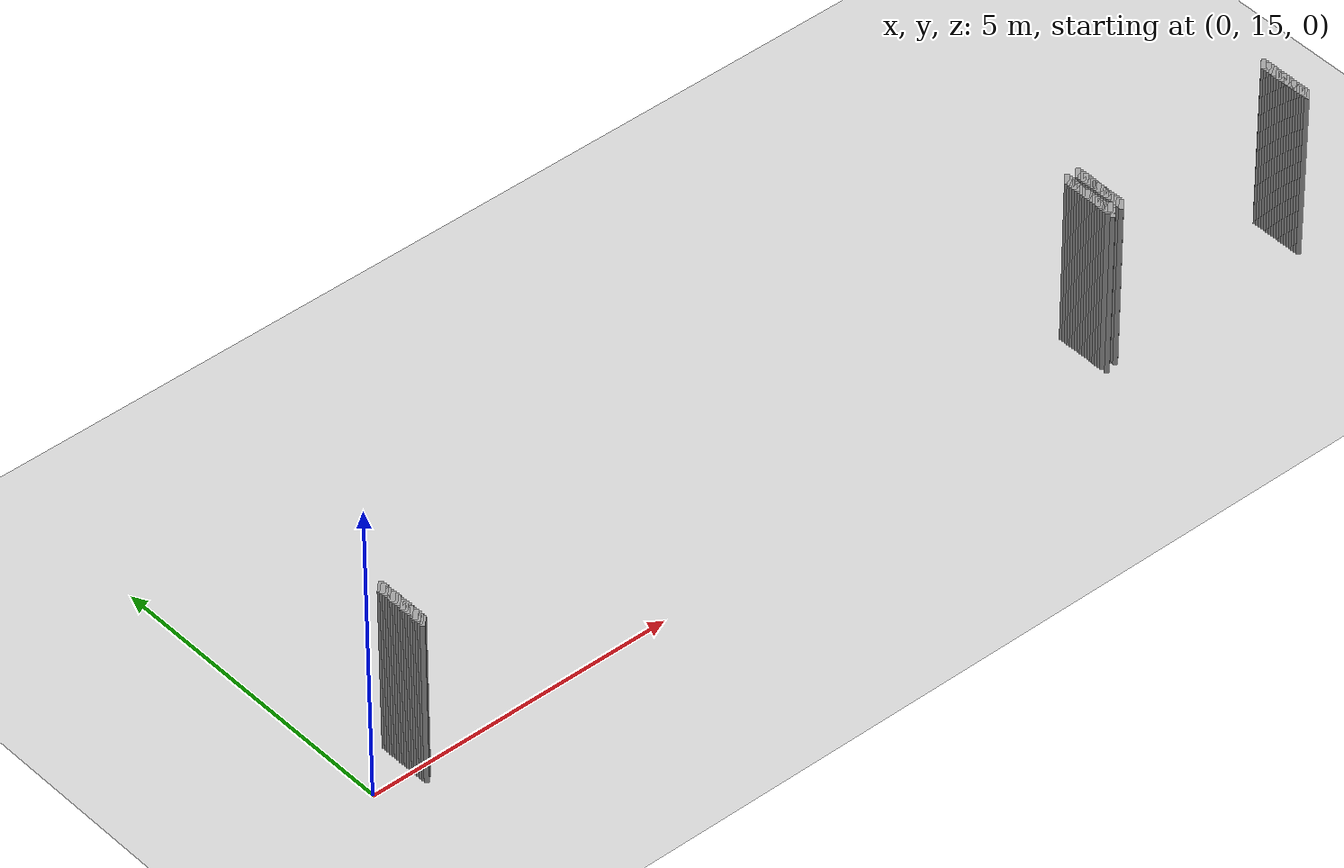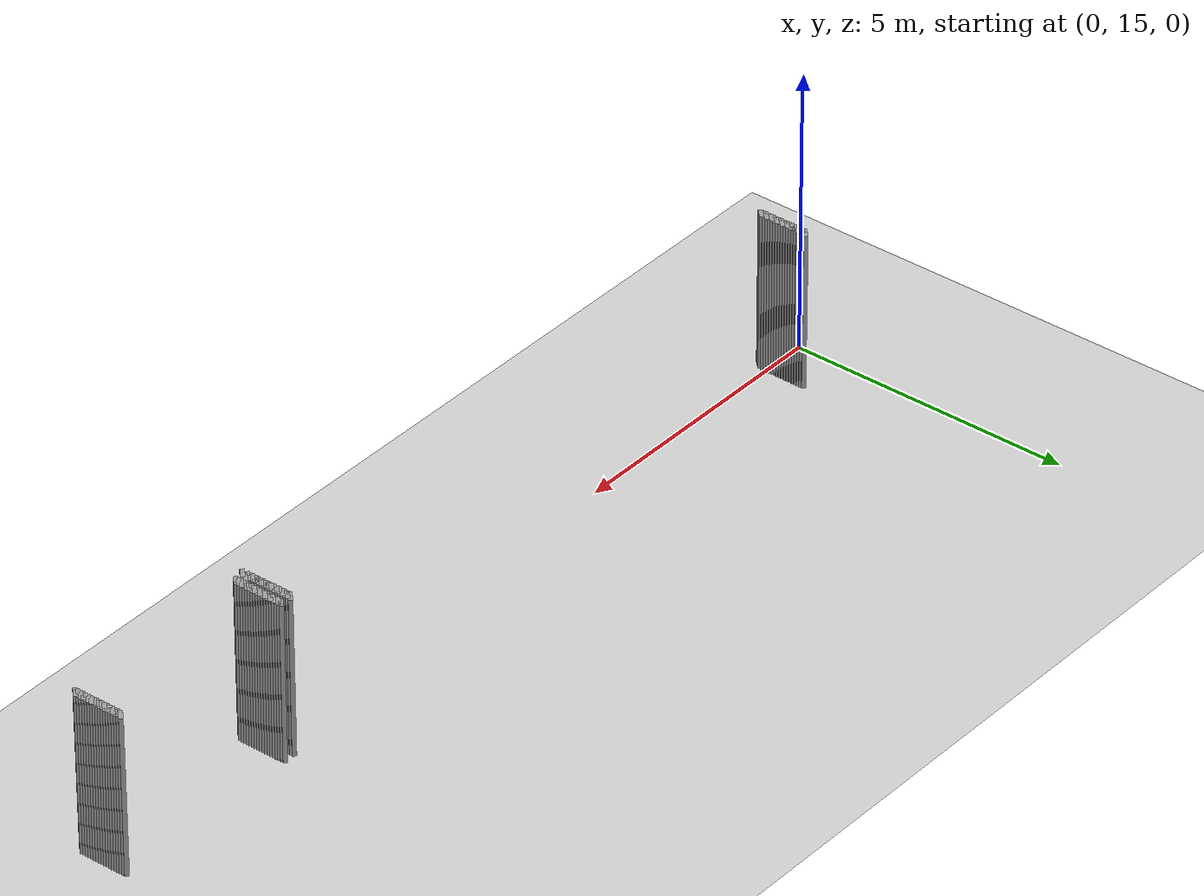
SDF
<sdf version="1.5">
 <world name="default">
  <include><uri>model://ground_plane</uri></include>
  <include><uri>model://sun</uri></include>
  <model name="grey_wall_597">
   <static>1</static>
   <link name="link">
    <pose>12.8 15.700000000000001  1.4 0 0 -0.7853981633974483</pose>
    <collision name="collision">
     <geometry><box><size>0.07071067811865576 .2  2.8</size></box></geometry>
    </collision>
    <visual name="visual">
     <cast_shadows>0</cast_shadows>
     <geometry><box><size>0.07071067811865576 .2  2.8</size></box></geometry>
     <material>
      <script>
       <uri>model://grey_wall/materials/scripts</uri>
       <uri>model://grey_wall/materials/textures</uri>
       <name>vrc/grey_wall</name>
      </script>
     </material>
    </visual>
   </link>
  </model>
  <model name="grey_wall_598">
   <static>1</static>
   <link name="link">
    <pose>13.0 15.700000000000001  1.4 0 0 -0.7853981633974483</pose>
    <collision name="collision">
     <geometry><box><size>0.07071067811865576 .2  2.8</size></box></geometry>
    </collision>
    <visual name="visual">
     <cast_shadows>0</cast_shadows>
     <geometry><box><size>0.07071067811865576 .2  2.8</size></box></geometry>
     <material>
      <script>
       <uri>model://grey_wall/materials/scripts</uri>
       <uri>model://grey_wall/materials/textures</uri>
       <name>vrc/grey_wall</name>
      </script>
     </material>
    </visual>
   </link>
  </model>
  <model name="grey_wall_599">
   <static>1</static>
   <link name="link">
    <pose>16.45 15.700000000000001  1.4 0 0 -0.7853981633974838</pose>
    <collision name="collision">
     <geometry><box><size>0.07071067811865325 .2  2.8</size></box></geometry>
    </collision>
    <visual name="visual">
     <cast_shadows>0</cast_shadows>
     <geometry><box><size>0.07071067811865325 .2  2.8</size></box></geometry>
     <material>
      <script>
       <uri>model://grey_wall/materials/scripts</uri>
       <uri>model://grey_wall/materials/textures</uri>
       <name>vrc/grey_wall</name>
      </script>
     </material>
    </visual>
   </link>
  </model>
  <model name="grey_wall_600">
   <static>1</static>
   <link name="link">
    <pose>0.75 15.65  1.4 0 0 -0.7853981633974549</pose>
    <collision name="collision">
     <geometry><box><size>0.07071067811865529 .2  2.8</size></box></geometry>
    </collision>
    <visual name="visual">
     <cast_shadows>0</cast_shadows>
     <geometry><box><size>0.07071067811865529 .2  2.8</size></box></geometry>
     <material>
      <script>
       <uri>model://grey_wall/materials/scripts</uri>
       <uri>model://grey_wall/materials/textures</uri>
       <name>vrc/grey_wall</name>
      </script>
     </material>
    </visual>
   </link>
  </model>
  <model name="grey_wall_601">
   <static>1</static>
   <link name="link">
    <pose>12.8 15.65  1.4 0 0 -0.7853981633974483</pose>
    <collision name="collision">
     <geometry><box><size>0.07071067811865576 .2  2.8</size></box></geometry>
    </collision>
    <visual name="visual">
     <cast_shadows>0</cast_shadows>
     <geometry><box><size>0.07071067811865576 .2  2.8</size></box></geometry>
     <material>
      <script>
       <uri>model://grey_wall/materials/scripts</uri>
       <uri>model://grey_wall/materials/textures</uri>
       <name>vrc/grey_wall</name>
      </script>
     </material>
    </visual>
   </link>
  </model>
  <model name="grey_wall_602">
   <static>1</static>
   <link name="link">
    <pose>13.0 15.65  1.4 0 0 -0.7853981633974483</pose>
    <collision name="collision">
     <geometry><box><size>0.07071067811865576 .2  2.8</size></box></geometry>
    </collision>
    <visual name="visual">
     <cast_shadows>0</cast_shadows>
     <geometry><box><size>0.07071067811865576 .2  2.8</size></box></geometry>
     <material>
      <script>
       <uri>model://grey_wall/materials/scripts</uri>
       <uri>model://grey_wall/materials/textures</uri>
       <name>vrc/grey_wall</name>
      </script>
     </material>
    </visual>
   </link>
  </model>
  <model name="grey_wall_603">
   <static>1</static>
   <link name="link">
    <pose>16.45 15.65  1.4 0 0 -0.7853981633974838</pose>
    <collision name="collision">
     <geometry><box><size>0.07071067811865325 .2  2.8</size></box></geometry>
    </collision>
    <visual name="visual">
     <cast_shadows>0</cast_shadows>
     <geometry><box><size>0.07071067811865325 .2  2.8</size></box></geometry>
     <material>
      <script>
       <uri>model://grey_wall/materials/scripts</uri>
       <uri>model://grey_wall/materials/textures</uri>
       <name>vrc/grey_wall</name>
      </script>
     </material>
    </visual>
   </link>
  </model>
  <model name="grey_wall_604">
   <static>1</static>
   <link name="link">
    <pose>0.75 15.600000000000001  1.4 0 0 -0.7853981633974549</pose>
    <collision name="collision">
     <geometry><box><size>0.07071067811865529 .2  2.8</size></box></geometry>
    </collision>
    <visual name="visual">
     <cast_shadows>0</cast_shadows>
     <geometry><box><size>0.07071067811865529 .2  2.8</size></box></geometry>
     <material>
      <script>
       <uri>model://grey_wall/materials/scripts</uri>
       <uri>model://grey_wall/materials/textures</uri>
       <name>vrc/grey_wall</name>
      </script>
     </material>
    </visual>
   </link>
  </model>
  <model name="grey_wall_605">
   <static>1</static>
   <link name="link">
    <pose>12.8 15.600000000000001  1.4 0 0 -0.7853981633974483</pose>
    <collision name="collision">
     <geometry><box><size>0.07071067811865576 .2  2.8</size></box></geometry>
    </collision>
    <visual name="visual">
     <cast_shadows>0</cast_shadows>
     <geometry><box><size>0.07071067811865576 .2  2.8</size></box></geometry>
     <material>
      <script>
       <uri>model://grey_wall/materials/scripts</uri>
       <uri>model://grey_wall/materials/textures</uri>
       <name>vrc/grey_wall</name>
      </script>
     </material>
    </visual>
   </link>
  </model>
  <model name="grey_wall_606">
   <static>1</static>
   <link name="link">
    <pose>13.0 15.600000000000001  1.4 0 0 -0.7853981633974483</pose>
    <collision name="collision">
     <geometry><box><size>0.07071067811865576 .2  2.8</size></box></geometry>
    </collision>
    <visual name="visual">
     <cast_shadows>0</cast_shadows>
     <geometry><box><size>0.07071067811865576 .2  2.8</size></box></geometry>
     <material>
      <script>
       <uri>model://grey_wall/materials/scripts</uri>
       <uri>model://grey_wall/materials/textures</uri>
       <name>vrc/grey_wall</name>
      </script>
     </material>
    </visual>
   </link>
  </model>
  <model name="grey_wall_607">
   <static>1</static>
   <link name="link">
    <pose>16.45 15.600000000000001  1.4 0 0 -0.7853981633974838</pose>
    <collision name="collision">
     <geometry><box><size>0.07071067811865325 .2  2.8</size></box></geometry>
    </collision>
    <visual name="visual">
     <cast_shadows>0</cast_shadows>
     <geometry><box><size>0.07071067811865325 .2  2.8</size></box></geometry>
     <material>
      <script>
       <uri>model://grey_wall/materials/scripts</uri>
       <uri>model://grey_wall/materials/textures</uri>
       <name>vrc/grey_wall</name>
      </script>
     </material>
    </visual>
   </link>
  </model>
  <model name="grey_wall_608">
   <static>1</static>
   <link name="link">
    <pose>0.75 15.55  1.4 0 0 -0.7853981633974549</pose>
    <collision name="collision">
     <geometry><box><size>0.07071067811865529 .2  2.8</size></box></geometry>
    </collision>
    <visual name="visual">
     <cast_shadows>0</cast_shadows>
     <geometry><box><size>0.07071067811865529 .2  2.8</size></box></geometry>
     <material>
      <script>
       <uri>model://grey_wall/materials/scripts</uri>
       <uri>model://grey_wall/materials/textures</uri>
       <name>vrc/grey_wall</name>
      </script>
     </material>
    </visual>
   </link>
  </model>
  <model name="grey_wall_609">
   <static>1</static>
   <link name="link">
    <pose>12.8 15.55  1.4 0 0 -0.7853981633974483</pose>
    <collision name="collision">
     <geometry><box><size>0.07071067811865576 .2  2.8</size></box></geometry>
    </collision>
    <visual name="visual">
     <cast_shadows>0</cast_shadows>
     <geometry><box><size>0.07071067811865576 .2  2.8</size></box></geometry>
     <material>
      <script>
       <uri>model://grey_wall/materials/scripts</uri>
       <uri>model://grey_wall/materials/textures</uri>
       <name>vrc/grey_wall</name>
      </script>
     </material>
    </visual>
   </link>
  </model>
  <model name="grey_wall_610">
   <static>1</static>
   <link name="link">
    <pose>13.0 15.55  1.4 0 0 -0.7853981633974483</pose>
    <collision name="collision">
     <geometry><box><size>0.07071067811865576 .2  2.8</size></box></geometry>
    </collision>
    <visual name="visual">
     <cast_shadows>0</cast_shadows>
     <geometry><box><size>0.07071067811865576 .2  2.8</size></box></geometry>
     <material>
      <script>
       <uri>model://grey_wall/materials/scripts</uri>
       <uri>model://grey_wall/materials/textures</uri>
       <name>vrc/grey_wall</name>
      </script>
     </material>
    </visual>
   </link>
  </model>
  <model name="grey_wall_611">
   <static>1</static>
   <link name="link">
    <pose>16.45 15.55  1.4 0 0 -0.7853981633974838</pose>
    <collision name="collision">
     <geometry><box><size>0.07071067811865325 .2  2.8</size></box></geometry>
    </collision>
    <visual name="visual">
     <cast_shadows>0</cast_shadows>
     <geometry><box><size>0.07071067811865325 .2  2.8</size></box></geometry>
     <material>
      <script>
       <uri>model://grey_wall/materials/scripts</uri>
       <uri>model://grey_wall/materials/textures</uri>
       <name>vrc/grey_wall</name>
      </script>
     </material>
    </visual>
   </link>
  </model>
  <model name="grey_wall_612">
   <static>1</static>
   <link name="link">
    <pose>0.75 15.5  1.4 0 0 -0.7853981633974549</pose>
    <collision name="collision">
     <geometry><box><size>0.07071067811865529 .2  2.8</size></box></geometry>
    </collision>
    <visual name="visual">
     <cast_shadows>0</cast_shadows>
     <geometry><box><size>0.07071067811865529 .2  2.8</size></box></geometry>
     <material>
      <script>
       <uri>model://grey_wall/materials/scripts</uri>
       <uri>model://grey_wall/materials/textures</uri>
       <name>vrc/grey_wall</name>
      </script>
     </material>
    </visual>
   </link>
  </model>
  <model name="grey_wall_613">
   <static>1</static>
   <link name="link">
    <pose>12.8 15.5  1.4 0 0 -0.7853981633974483</pose>
    <collision name="collision">
     <geometry><box><size>0.07071067811865576 .2  2.8</size></box></geometry>
    </collision>
    <visual name="visual">
     <cast_shadows>0</cast_shadows>
     <geometry><box><size>0.07071067811865576 .2  2.8</size></box></geometry>
     <material>
      <script>
       <uri>model://grey_wall/materials/scripts</uri>
       <uri>model://grey_wall/materials/textures</uri>
       <name>vrc/grey_wall</name>
      </script>
     </material>
    </visual>
   </link>
  </model>
  <model name="grey_wall_614">
   <static>1</static>
   <link name="link">
    <pose>13.0 15.5  1.4 0 0 -0.7853981633974483</pose>
    <collision name="collision">
     <geometry><box><size>0.07071067811865576 .2  2.8</size></box></geometry>
    </collision>
    <visual name="visual">
     <cast_shadows>0</cast_shadows>
     <geometry><box><size>0.07071067811865576 .2  2.8</size></box></geometry>
     <material>
      <script>
       <uri>model://grey_wall/materials/scripts</uri>
       <uri>model://grey_wall/materials/textures</uri>
       <name>vrc/grey_wall</name>
      </script>
     </material>
    </visual>
   </link>
  </model>
  <model name="grey_wall_615">
   <static>1</static>
   <link name="link">
    <pose>16.45 15.5  1.4 0 0 -0.7853981633974838</pose>
    <collision name="collision">
     <geometry><box><size>0.07071067811865325 .2  2.8</size></box></geometry>
    </collision>
    <visual name="visual">
     <cast_shadows>0</cast_shadows>
     <geometry><box><size>0.07071067811865325 .2  2.8</size></box></geometry>
     <material>
      <script>
       <uri>model://grey_wall/materials/scripts</uri>
       <uri>model://grey_wall/materials/textures</uri>
       <name>vrc/grey_wall</name>
      </script>
     </material>
    </visual>
   </link>
  </model>
  <model name="grey_wall_616">
   <static>1</static>
   <link name="link">
    <pose>0.75 15.450000000000001  1.4 0 0 -0.7853981633974549</pose>
    <collision name="collision">
     <geometry><box><size>0.07071067811865529 .2  2.8</size></box></geometry>
    </collision>
    <visual name="visual">
     <cast_shadows>0</cast_shadows>
     <geometry><box><size>0.07071067811865529 .2  2.8</size></box></geometry>
     <material>
      <script>
       <uri>model://grey_wall/materials/scripts</uri>
       <uri>model://grey_wall/materials/textures</uri>
       <name>vrc/grey_wall</name>
      </script>
     </material>
    </visual>
   </link>
  </model>
  <model name="grey_wall_617">
   <static>1</static>
   <link name="link">
    <pose>12.8 15.450000000000001  1.4 0 0 -0.7853981633974483</pose>
    <collision name="collision">
     <geometry><box><size>0.07071067811865576 .2  2.8</size></box></geometry>
    </collision>
    <visual name="visual">
     <cast_shadows>0</cast_shadows>
     <geometry><box><size>0.07071067811865576 .2  2.8</size></box></geometry>
     <material>
      <script>
       <uri>model://grey_wall/materials/scripts</uri>
       <uri>model://grey_wall/materials/textures</uri>
       <name>vrc/grey_wall</name>
      </script>
     </material>
    </visual>
   </link>
  </model>
  <model name="grey_wall_618">
   <static>1</static>
   <link name="link">
    <pose>13.0 15.450000000000001  1.4 0 0 -0.7853981633974483</pose>
    <collision name="collision">
     <geometry><box><size>0.07071067811865576 .2  2.8</size></box></geometry>
    </collision>
    <visual name="visual">
     <cast_shadows>0</cast_shadows>
     <geometry><box><size>0.07071067811865576 .2  2.8</size></box></geometry>
     <material>
      <script>
       <uri>model://grey_wall/materials/scripts</uri>
       <uri>model://grey_wall/materials/textures</uri>
       <name>vrc/grey_wall</name>
      </script>
     </material>
    </visual>
   </link>
  </model>
  <model name="grey_wall_619">
   <static>1</static>
   <link name="link">
    <pose>16.45 15.450000000000001  1.4 0 0 -0.7853981633974838</pose>
    <collision name="collision">
     <geometry><box><size>0.07071067811865325 .2  2.8</size></box></geometry>
    </collision>
    <visual name="visual">
     <cast_shadows>0</cast_shadows>
     <geometry><box><size>0.07071067811865325 .2  2.8</size></box></geometry>
     <material>
      <script>
       <uri>model://grey_wall/materials/scripts</uri>
       <uri>model://grey_wall/materials/textures</uri>
       <name>vrc/grey_wall</name>
      </script>
     </material>
    </visual>
   </link>
  </model>
  <model name="grey_wall_620">
   <static>1</static>
   <link name="link">
    <pose>0.75 15.4  1.4 0 0 -0.7853981633974549</pose>
    <collision name="collision">
     <geometry><box><size>0.07071067811865529 .2  2.8</size></box></geometry>
    </collision>
    <visual name="visual">
     <cast_shadows>0</cast_shadows>
     <geometry><box><size>0.07071067811865529 .2  2.8</size></box></geometry>
     <material>
      <script>
       <uri>model://grey_wall/materials/scripts</uri>
       <uri>model://grey_wall/materials/textures</uri>
       <name>vrc/grey_wall</name>
      </script>
     </material>
    </visual>
   </link>
  </model>
  <model name="grey_wall_621">
   <static>1</static>
   <link name="link">
    <pose>12.8 15.4  1.4 0 0 -0.7853981633974483</pose>
    <collision name="collision">
     <geometry><box><size>0.07071067811865576 .2  2.8</size></box></geometry>
    </collision>
    <visual name="visual">
     <cast_shadows>0</cast_shadows>
     <geometry><box><size>0.07071067811865576 .2  2.8</size></box></geometry>
     <material>
      <script>
       <uri>model://grey_wall/materials/scripts</uri>
       <uri>model://grey_wall/materials/textures</uri>
       <name>vrc/grey_wall</name>
      </script>
     </material>
    </visual>
   </link>
  </model>
  <model name="grey_wall_622">
   <static>1</static>
   <link name="link">
    <pose>13.0 15.4  1.4 0 0 -0.7853981633974483</pose>
    <collision name="collision">
     <geometry><box><size>0.07071067811865576 .2  2.8</size></box></geometry>
    </collision>
    <visual name="visual">
     <cast_shadows>0</cast_shadows>
     <geometry><box><size>0.07071067811865576 .2  2.8</size></box></geometry>
     <material>
      <script>
       <uri>model://grey_wall/materials/scripts</uri>
       <uri>model://grey_wall/materials/textures</uri>
       <name>vrc/grey_wall</name>
      </script>
     </material>
    </visual>
   </link>
  </model>
  <model name="grey_wall_623">
   <static>1</static>
   <link name="link">
    <pose>16.45 15.4  1.4 0 0 -0.7853981633974838</pose>
    <collision name="collision">
     <geometry><box><size>0.07071067811865325 .2  2.8</size></box></geometry>
    </collision>
    <visual name="visual">
     <cast_shadows>0</cast_shadows>
     <geometry><box><size>0.07071067811865325 .2  2.8</size></box></geometry>
     <material>
      <script>
       <uri>model://grey_wall/materials/scripts</uri>
       <uri>model://grey_wall/materials/textures</uri>
       <name>vrc/grey_wall</name>
      </script>
     </material>
    </visual>
   </link>
  </model>
  <model name="grey_wall_624">
   <static>1</static>
   <link name="link">
    <pose>0.75 15.350000000000001  1.4 0 0 -0.7853981633974549</pose>
    <collision name="collision">
     <geometry><box><size>0.07071067811865529 .2  2.8</size></box></geometry>
    </collision>
    <visual name="visual">
     <cast_shadows>0</cast_shadows>
     <geometry><box><size>0.07071067811865529 .2  2.8</size></box></geometry>
     <material>
      <script>
       <uri>model://grey_wall/materials/scripts</uri>
       <uri>model://grey_wall/materials/textures</uri>
       <name>vrc/grey_wall</name>
      </script>
     </material>
    </visual>
   </link>
  </model>
  <model name="grey_wall_625">
   <static>1</static>
   <link name="link">
    <pose>12.8 15.350000000000001  1.4 0 0 -0.7853981633974483</pose>
    <collision name="collision">
     <geometry><box><size>0.07071067811865576 .2  2.8</size></box></geometry>
    </collision>
    <visual name="visual">
     <cast_shadows>0</cast_shadows>
     <geometry><box><size>0.07071067811865576 .2  2.8</size></box></geometry>
     <material>
      <script>
       <uri>model://grey_wall/materials/scripts</uri>
       <uri>model://grey_wall/materials/textures</uri>
       <name>vrc/grey_wall</name>
      </script>
     </material>
    </visual>
   </link>
  </model>
  <model name="grey_wall_626">
   <static>1</static>
   <link name="link">
    <pose>13.0 15.350000000000001  1.4 0 0 -0.7853981633974483</pose>
    <collision name="collision">
     <geometry><box><size>0.07071067811865576 .2  2.8</size></box></geometry>
    </collision>
    <visual name="visual">
     <cast_shadows>0</cast_shadows>
     <geometry><box><size>0.07071067811865576 .2  2.8</size></box></geometry>
     <material>
      <script>
       <uri>model://grey_wall/materials/scripts</uri>
       <uri>model://grey_wall/materials/textures</uri>
       <name>vrc/grey_wall</name>
      </script>
     </material>
    </visual>
   </link>
  </model>
  <model name="grey_wall_627">
   <static>1</static>
   <link name="link">
    <pose>16.45 15.350000000000001  1.4 0 0 -0.7853981633974838</pose>
    <collision name="collision">
     <geometry><box><size>0.07071067811865325 .2  2.8</size></box></geometry>
    </collision>
    <visual name="visual">
     <cast_shadows>0</cast_shadows>
     <geometry><box><size>0.07071067811865325 .2  2.8</size></box></geometry>
     <material>
      <script>
       <uri>model://grey_wall/materials/scripts</uri>
       <uri>model://grey_wall/materials/textures</uri>
       <name>vrc/grey_wall</name>
      </script>
     </material>
    </visual>
   </link>
  </model>
  <model name="grey_wall_628">
   <static>1</static>
   <link name="link">
    <pose>0.75 15.3  1.4 0 0 -0.7853981633974549</pose>
    <collision name="collision">
     <geometry><box><size>0.07071067811865529 .2  2.8</size></box></geometry>
    </collision>
    <visual name="visual">
     <cast_shadows>0</cast_shadows>
     <geometry><box><size>0.07071067811865529 .2  2.8</size></box></geometry>
     <material>
      <script>
       <uri>model://grey_wall/materials/scripts</uri>
       <uri>model://grey_wall/materials/textures</uri>
       <name>vrc/grey_wall</name>
      </script>
     </material>
    </visual>
   </link>
  </model>
  <model name="grey_wall_629">
   <static>1</static>
   <link name="link">
    <pose>12.8 15.3  1.4 0 0 -0.7853981633974483</pose>
    <collision name="collision">
     <geometry><box><size>0.07071067811865576 .2  2.8</size></box></geometry>
    </collision>
    <visual name="visual">
     <cast_shadows>0</cast_shadows>
     <geometry><box><size>0.07071067811865576 .2  2.8</size></box></geometry>
     <material>
      <script>
       <uri>model://grey_wall/materials/scripts</uri>
       <uri>model://grey_wall/materials/textures</uri>
       <name>vrc/grey_wall</name>
      </script>
     </material>
    </visual>
   </link>
  </model>
  <model name="grey_wall_630">
   <static>1</static>
   <link name="link">
    <pose>13.0 15.3  1.4 0 0 -0.7853981633974483</pose>
    <collision name="collision">
     <geometry><box><size>0.07071067811865576 .2  2.8</size></box></geometry>
    </collision>
    <visual name="visual">
     <cast_shadows>0</cast_shadows>
     <geometry><box><size>0.07071067811865576 .2  2.8</size></box></geometry>
     <material>
      <script>
       <uri>model://grey_wall/materials/scripts</uri>
       <uri>model://grey_wall/materials/textures</uri>
       <name>vrc/grey_wall</name>
      </script>
     </material>
    </visual>
   </link>
  </model>
  <model name="grey_wall_631">
   <static>1</static>
   <link name="link">
    <pose>16.45 15.3  1.4 0 0 -0.7853981633974838</pose>
    <collision name="collision">
     <geometry><box><size>0.07071067811865325 .2  2.8</size></box></geometry>
    </collision>
    <visual name="visual">
     <cast_shadows>0</cast_shadows>
     <geometry><box><size>0.07071067811865325 .2  2.8</size></box></geometry>
     <material>
      <script>
       <uri>model://grey_wall/materials/scripts</uri>
       <uri>model://grey_wall/materials/textures</uri>
       <name>vrc/grey_wall</name>
      </script>
     </material>
    </visual>
   </link>
  </model>
  <model name="grey_wall_632">
   <static>1</static>
   <link name="link">
    <pose>0.75 15.25  1.4 0 0 -0.7853981633974549</pose>
    <collision name="collision">
     <geometry><box><size>0.07071067811865529 .2  2.8</size></box></geometry>
    </collision>
    <visual name="visual">
     <cast_shadows>0</cast_shadows>
     <geometry><box><size>0.07071067811865529 .2  2.8</size></box></geometry>
     <material>
      <script>
       <uri>model://grey_wall/materials/scripts</uri>
       <uri>model://grey_wall/materials/textures</uri>
       <name>vrc/grey_wall</name>
      </script>
     </material>
    </visual>
   </link>
  </model>
  <model name="grey_wall_633">
   <static>1</static>
   <link name="link">
    <pose>12.8 15.25  1.4 0 0 -0.7853981633974483</pose>
    <collision name="collision">
     <geometry><box><size>0.07071067811865576 .2  2.8</size></box></geometry>
    </collision>
    <visual name="visual">
     <cast_shadows>0</cast_shadows>
     <geometry><box><size>0.07071067811865576 .2  2.8</size></box></geometry>
     <material>
      <script>
       <uri>model://grey_wall/materials/scripts</uri>
       <uri>model://grey_wall/materials/textures</uri>
       <name>vrc/grey_wall</name>
      </script>
     </material>
    </visual>
   </link>
  </model>
  <model name="grey_wall_634">
   <static>1</static>
   <link name="link">
    <pose>13.0 15.25  1.4 0 0 -0.7853981633974483</pose>
    <collision name="collision">
     <geometry><box><size>0.07071067811865576 .2  2.8</size></box></geometry>
    </collision>
    <visual name="visual">
     <cast_shadows>0</cast_shadows>
     <geometry><box><size>0.07071067811865576 .2  2.8</size></box></geometry>
     <material>
      <script>
       <uri>model://grey_wall/materials/scripts</uri>
       <uri>model://grey_wall/materials/textures</uri>
       <name>vrc/grey_wall</name>
      </script>
     </material>
    </visual>
   </link>
  </model>
  <model name="grey_wall_635">
   <static>1</static>
   <link name="link">
    <pose>16.45 15.25  1.4 0 0 -0.7853981633974838</pose>
    <collision name="collision">
     <geometry><box><size>0.07071067811865325 .2  2.8</size></box></geometry>
    </collision>
    <visual name="visual">
     <cast_shadows>0</cast_shadows>
     <geometry><box><size>0.07071067811865325 .2  2.8</size></box></geometry>
     <material>
      <script>
       <uri>model://grey_wall/materials/scripts</uri>
       <uri>model://grey_wall/materials/textures</uri>
       <name>vrc/grey_wall</name>
      </script>
     </material>
    </visual>
   </link>
  </model>
  <model name="grey_wall_636">
   <static>1</static>
   <link name="link">
    <pose>0.75 15.200000000000001  1.4 0 0 -0.7853981633974549</pose>
    <collision name="collision">
     <geometry><box><size>0.07071067811865529 .2  2.8</size></box></geometry>
    </collision>
    <visual name="visual">
     <cast_shadows>0</cast_shadows>
     <geometry><box><size>0.07071067811865529 .2  2.8</size></box></geometry>
     <material>
      <script>
       <uri>model://grey_wall/materials/scripts</uri>
       <uri>model://grey_wall/materials/textures</uri>
       <name>vrc/grey_wall</name>
      </script>
     </material>
    </visual>
   </link>
  </model>
  <model name="grey_wall_637">
   <static>1</static>
   <link name="link">
    <pose>12.8 15.200000000000001  1.4 0 0 -0.7853981633974483</pose>
    <collision name="collision">
     <geometry><box><size>0.07071067811865576 .2  2.8</size></box></geometry>
    </collision>
    <visual name="visual">
     <cast_shadows>0</cast_shadows>
     <geometry><box><size>0.07071067811865576 .2  2.8</size></box></geometry>
     <material>
      <script>
       <uri>model://grey_wall/materials/scripts</uri>
       <uri>model://grey_wall/materials/textures</uri>
       <name>vrc/grey_wall</name>
      </script>
     </material>
    </visual>
   </link>
  </model>
  <model name="grey_wall_638">
   <static>1</static>
   <link name="link">
    <pose>13.0 15.200000000000001  1.4 0 0 -0.7853981633974483</pose>
    <collision name="collision">
     <geometry><box><size>0.07071067811865576 .2  2.8</size></box></geometry>
    </collision>
    <visual name="visual">
     <cast_shadows>0</cast_shadows>
     <geometry><box><size>0.07071067811865576 .2  2.8</size></box></geometry>
     <material>
      <script>
       <uri>model://grey_wall/materials/scripts</uri>
       <uri>model://grey_wall/materials/textures</uri>
       <name>vrc/grey_wall</name>
      </script>
     </material>
    </visual>
   </link>
  </model>
  <model name="grey_wall_639">
   <static>1</static>
   <link name="link">
    <pose>16.45 15.200000000000001  1.4 0 0 -0.7853981633974838</pose>
    <collision name="collision">
     <geometry><box><size>0.07071067811865325 .2  2.8</size></box></geometry>
    </collision>
    <visual name="visual">
     <cast_shadows>0</cast_shadows>
     <geometry><box><size>0.07071067811865325 .2  2.8</size></box></geometry>
     <material>
      <script>
       <uri>model://grey_wall/materials/scripts</uri>
       <uri>model://grey_wall/materials/textures</uri>
       <name>vrc/grey_wall</name>
      </script>
     </material>
    </visual>
   </link>
  </model>
  <model name="grey_wall_640">
   <static>1</static>
   <link name="link">
    <pose>0.75 15.15  1.4 0 0 -0.7853981633974549</pose>
    <collision name="collision">
     <geometry><box><size>0.07071067811865529 .2  2.8</size></box></geometry>
    </collision>
    <visual name="visual">
     <cast_shadows>0</cast_shadows>
     <geometry><box><size>0.07071067811865529 .2  2.8</size></box></geometry>
     <material>
      <script>
       <uri>model://grey_wall/materials/scripts</uri>
       <uri>model://grey_wall/materials/textures</uri>
       <name>vrc/grey_wall</name>
      </script>
     </material>
    </visual>
   </link>
  </model>
  <model name="grey_wall_641">
   <static>1</static>
   <link name="link">
    <pose>12.8 15.15  1.4 0 0 -0.7853981633974483</pose>
    <collision name="collision">
     <geometry><box><size>0.07071067811865576 .2  2.8</size></box></geometry>
    </collision>
    <visual name="visual">
     <cast_shadows>0</cast_shadows>
     <geometry><box><size>0.07071067811865576 .2  2.8</size></box></geometry>
     <material>
      <script>
       <uri>model://grey_wall/materials/scripts</uri>
       <uri>model://grey_wall/materials/textures</uri>
       <name>vrc/grey_wall</name>
      </script>
     </material>
    </visual>
   </link>
  </model>
  <model name="grey_wall_642">
   <static>1</static>
   <link name="link">
    <pose>13.0 15.15  1.4 0 0 -0.7853981633974483</pose>
    <collision name="collision">
     <geometry><box><size>0.07071067811865576 .2  2.8</size></box></geometry>
    </collision>
    <visual name="visual">
     <cast_shadows>0</cast_shadows>
     <geometry><box><size>0.07071067811865576 .2  2.8</size></box></geometry>
     <material>
      <script>
       <uri>model://grey_wall/materials/scripts</uri>
       <uri>model://grey_wall/materials/textures</uri>
       <name>vrc/grey_wall</name>
      </script>
     </material>
    </visual>
   </link>
  </model>
  <model name="grey_wall_643">
   <static>1</static>
   <link name="link">
    <pose>16.45 15.15  1.4 0 0 -0.7853981633974838</pose>
    <collision name="collision">
     <geometry><box><size>0.07071067811865325 .2  2.8</size></box></geometry>
    </collision>
    <visual name="visual">
     <cast_shadows>0</cast_shadows>
     <geometry><box><size>0.07071067811865325 .2  2.8</size></box></geometry>
     <material>
      <script>
       <uri>model://grey_wall/materials/scripts</uri>
       <uri>model://grey_wall/materials/textures</uri>
       <name>vrc/grey_wall</name>
      </script>
     </material>
    </visual>
   </link>
  </model>
  <model name="grey_wall_644">
   <static>1</static>
   <link name="link">
    <pose>0.75 15.100000000000001  1.4 0 0 -0.7853981633974549</pose>
    <collision name="collision">
     <geometry><box><size>0.07071067811865529 .2  2.8</size></box></geometry>
    </collision>
    <visual name="visual">
     <cast_shadows>0</cast_shadows>
     <geometry><box><size>0.07071067811865529 .2  2.8</size></box></geometry>
     <material>
      <script>
       <uri>model://grey_wall/materials/scripts</uri>
       <uri>model://grey_wall/materials/textures</uri>
       <name>vrc/grey_wall</name>
      </script>
     </material>
    </visual>
   </link>
  </model>
  <model name="grey_wall_645">
   <static>1</static>
   <link name="link">
    <pose>12.8 15.100000000000001  1.4 0 0 -0.7853981633974483</pose>
    <collision name="collision">
     <geometry><box><size>0.07071067811865576 .2  2.8</size></box></geometry>
    </collision>
    <visual name="visual">
     <cast_shadows>0</cast_shadows>
     <geometry><box><size>0.07071067811865576 .2  2.8</size></box></geometry>
     <material>
      <script>
       <uri>model://grey_wall/materials/scripts</uri>
       <uri>model://grey_wall/materials/textures</uri>
       <name>vrc/grey_wall</name>
      </script>
     </material>
    </visual>
   </link>
  </model>
  <model name="grey_wall_646">
   <static>1</static>
   <link name="link">
    <pose>13.0 15.100000000000001  1.4 0 0 -0.7853981633974483</pose>
    <collision name="collision">
     <geometry><box><size>0.07071067811865576 .2  2.8</size></box></geometry>
    </collision>
    <visual name="visual">
     <cast_shadows>0</cast_shadows>
     <geometry><box><size>0.07071067811865576 .2  2.8</size></box></geometry>
     <material>
      <script>
       <uri>model://grey_wall/materials/scripts</uri>
       <uri>model://grey_wall/materials/textures</uri>
       <name>vrc/grey_wall</name>
      </script>
     </material>
    </visual>
   </link>
  </model>
  <model name="grey_wall_647">
   <static>1</static>
   <link name="link">
    <pose>16.45 15.100000000000001  1.4 0 0 -0.7853981633974838</pose>
    <collision name="collision">
     <geometry><box><size>0.07071067811865325 .2  2.8</size></box></geometry>
    </collision>
    <visual name="visual">
     <cast_shadows>0</cast_shadows>
     <geometry><box><size>0.07071067811865325 .2  2.8</size></box></geometry>
     <material>
      <script>
       <uri>model://grey_wall/materials/scripts</uri>
       <uri>model://grey_wall/materials/textures</uri>
       <name>vrc/grey_wall</name>
      </script>
     </material>
    </visual>
   </link>
  </model>
  <model name="grey_wall_648">
   <static>1</static>
   <link name="link">
    <pose>0.75 15.05  1.4 0 0 -0.7853981633974549</pose>
    <collision name="collision">
     <geometry><box><size>0.07071067811865529 .2  2.8</size></box></geometry>
    </collision>
    <visual name="visual">
     <cast_shadows>0</cast_shadows>
     <geometry><box><size>0.07071067811865529 .2  2.8</size></box></geometry>
     <material>
      <script>
       <uri>model://grey_wall/materials/scripts</uri>
       <uri>model://grey_wall/materials/textures</uri>
       <name>vrc/grey_wall</name>
      </script>
     </material>
    </visual>
   </link>
  </model>
  <model name="grey_wall_649">
   <static>1</static>
   <link name="link">
    <pose>12.8 15.05  1.4 0 0 -0.7853981633974483</pose>
    <collision name="collision">
     <geometry><box><size>0.07071067811865576 .2  2.8</size></box></geometry>
    </collision>
    <visual name="visual">
     <cast_shadows>0</cast_shadows>
     <geometry><box><size>0.07071067811865576 .2  2.8</size></box></geometry>
     <material>
      <script>
       <uri>model://grey_wall/materials/scripts</uri>
       <uri>model://grey_wall/materials/textures</uri>
       <name>vrc/grey_wall</name>
      </script>
     </material>
    </visual>
   </link>
  </model>
  <model name="grey_wall_650">
   <static>1</static>
   <link name="link">
    <pose>13.0 15.05  1.4 0 0 -0.7853981633974483</pose>
    <collision name="collision">
     <geometry><box><size>0.07071067811865576 .2  2.8</size></box></geometry>
    </collision>
    <visual name="visual">
     <cast_shadows>0</cast_shadows>
     <geometry><box><size>0.07071067811865576 .2  2.8</size></box></geometry>
     <material>
      <script>
       <uri>model://grey_wall/materials/scripts</uri>
       <uri>model://grey_wall/materials/textures</uri>
       <name>vrc/grey_wall</name>
      </script>
     </material>
    </visual>
   </link>
  </model>
  <model name="grey_wall_651">
   <static>1</static>
   <link name="link">
    <pose>16.45 15.05  1.4 0 0 -0.7853981633974838</pose>
    <collision name="collision">
     <geometry><box><size>0.07071067811865325 .2  2.8</size></box></geometry>
    </collision>
    <visual name="visual">
     <cast_shadows>0</cast_shadows>
     <geometry><box><size>0.07071067811865325 .2  2.8</size></box></geometry>
     <material>
      <script>
       <uri>model://grey_wall/materials/scripts</uri>
       <uri>model://grey_wall/materials/textures</uri>
       <name>vrc/grey_wall</name>
      </script>
     </material>
    </visual>
   </link>
  </model>
  <model name="grey_wall_652">
   <static>1</static>
   <link name="link">
    <pose>0.75 15.0  1.4 0 0 -0.7853981633974549</pose>
    <collision name="collision">
     <geometry><box><size>0.07071067811865529 .2  2.8</size></box></geometry>
    </collision>
    <visual name="visual">
     <cast_shadows>0</cast_shadows>
     <geometry><box><size>0.07071067811865529 .2  2.8</size></box></geometry>
     <material>
      <script>
       <uri>model://grey_wall/materials/scripts</uri>
       <uri>model://grey_wall/materials/textures</uri>
       <name>vrc/grey_wall</name>
      </script>
     </material>
    </visual>
   </link>
  </model>
  <model name="grey_wall_653">
   <static>1</static>
   <link name="link">
    <pose>12.8 15.0  1.4 0 0 -0.7853981633974483</pose>
    <collision name="collision">
     <geometry><box><size>0.07071067811865576 .2  2.8</size></box></geometry>
    </collision>
    <visual name="visual">
     <cast_shadows>0</cast_shadows>
     <geometry><box><size>0.07071067811865576 .2  2.8</size></box></geometry>
     <material>
      <script>
       <uri>model://grey_wall/materials/scripts</uri>
       <uri>model://grey_wall/materials/textures</uri>
       <name>vrc/grey_wall</name>
      </script>
     </material>
    </visual>
   </link>
  </model>
  <model name="grey_wall_654">
   <static>1</static>
   <link name="link">
    <pose>13.0 15.0  1.4 0 0 -0.7853981633974483</pose>
    <collision name="collision">
     <geometry><box><size>0.07071067811865576 .2  2.8</size></box></geometry>
    </collision>
    <visual name="visual">
     <cast_shadows>0</cast_shadows>
     <geometry><box><size>0.07071067811865576 .2  2.8</size></box></geometry>
     <material>
      <script>
       <uri>model://grey_wall/materials/scripts</uri>
       <uri>model://grey_wall/materials/textures</uri>
       <name>vrc/grey_wall</name>
      </script>
     </material>
    </visual>
   </link>
  </model>
  <model name="grey_wall_655">
   <static>1</static>
   <link name="link">
    <pose>16.45 15.0  1.4 0 0 -0.7853981633974838</pose>
    <collision name="collision">
     <geometry><box><size>0.07071067811865325 .2  2.8</size></box></geometry>
    </collision>
    <visual name="visual">
     <cast_shadows>0</cast_shadows>
     <geometry><box><size>0.07071067811865325 .2  2.8</size></box></geometry>
     <material>
      <script>
       <uri>model://grey_wall/materials/scripts</uri>
       <uri>model://grey_wall/materials/textures</uri>
       <name>vrc/grey_wall</name>
      </script>
     </material>
    </visual>
   </link>
  </model>
  <model name="grey_wall_656">
   <static>1</static>
   <link name="link">
    <pose>0.75 14.950000000000001  1.4 0 0 -0.7853981633974549</pose>
    <collision name="collision">
     <geometry><box><size>0.07071067811865529 .2  2.8</size></box></geometry>
    </collision>
    <visual name="visual">
     <cast_shadows>0</cast_shadows>
     <geometry><box><size>0.07071067811865529 .2  2.8</size></box></geometry>
     <material>
      <script>
       <uri>model://grey_wall/materials/scripts</uri>
       <uri>model://grey_wall/materials/textures</uri>
       <name>vrc/grey_wall</name>
      </script>
     </material>
    </visual>
   </link>
  </model>
  <model name="grey_wall_657">
   <static>1</static>
   <link name="link">
    <pose>12.8 14.950000000000001  1.4 0 0 -0.7853981633974483</pose>
    <collision name="collision">
     <geometry><box><size>0.07071067811865576 .2  2.8</size></box></geometry>
    </collision>
    <visual name="visual">
     <cast_shadows>0</cast_shadows>
     <geometry><box><size>0.07071067811865576 .2  2.8</size></box></geometry>
     <material>
      <script>
       <uri>model://grey_wall/materials/scripts</uri>
       <uri>model://grey_wall/materials/textures</uri>
       <name>vrc/grey_wall</name>
      </script>
     </material>
    </visual>
   </link>
  </model>
  <model name="grey_wall_658">
   <static>1</static>
   <link name="link">
    <pose>13.0 14.950000000000001  1.4 0 0 -0.7853981633974483</pose>
    <collision name="collision">
     <geometry><box><size>0.07071067811865576 .2  2.8</size></box></geometry>
    </collision>
    <visual name="visual">
     <cast_shadows>0</cast_shadows>
     <geometry><box><size>0.07071067811865576 .2  2.8</size></box></geometry>
     <material>
      <script>
       <uri>model://grey_wall/materials/scripts</uri>
       <uri>model://grey_wall/materials/textures</uri>
       <name>vrc/grey_wall</name>
      </script>
     </material>
    </visual>
   </link>
  </model>
  <model name="grey_wall_659">
   <static>1</static>
   <link name="link">
    <pose>16.45 14.950000000000001  1.4 0 0 -0.7853981633974838</pose>
    <collision name="collision">
     <geometry><box><size>0.07071067811865325 .2  2.8</size></box></geometry>
    </collision>
    <visual name="visual">
     <cast_shadows>0</cast_shadows>
     <geometry><box><size>0.07071067811865325 .2  2.8</size></box></geometry>
     <material>
      <script>
       <uri>model://grey_wall/materials/scripts</uri>
       <uri>model://grey_wall/materials/textures</uri>
       <name>vrc/grey_wall</name>
      </script>
     </material>
    </visual>
   </link>
  </model>
  <model name="grey_wall_660">
   <static>1</static>
   <link name="link">
    <pose>0.75 14.9  1.4 0 0 -0.7853981633974549</pose>
    <collision name="collision">
     <geometry><box><size>0.07071067811865529 .2  2.8</size></box></geometry>
    </collision>
    <visual name="visual">
     <cast_shadows>0</cast_shadows>
     <geometry><box><size>0.07071067811865529 .2  2.8</size></box></geometry>
     <material>
      <script>
       <uri>model://grey_wall/materials/scripts</uri>
       <uri>model://grey_wall/materials/textures</uri>
       <name>vrc/grey_wall</name>
      </script>
     </material>
    </visual>
   </link>
  </model>
  <model name="grey_wall_661">
   <static>1</static>
   <link name="link">
    <pose>12.8 14.9  1.4 0 0 -0.7853981633974483</pose>
    <collision name="collision">
     <geometry><box><size>0.07071067811865576 .2  2.8</size></box></geometry>
    </collision>
    <visual name="visual">
     <cast_shadows>0</cast_shadows>
     <geometry><box><size>0.07071067811865576 .2  2.8</size></box></geometry>
     <material>
      <script>
       <uri>model://grey_wall/materials/scripts</uri>
       <uri>model://grey_wall/materials/textures</uri>
       <name>vrc/grey_wall</name>
      </script>
     </material>
    </visual>
   </link>
  </model>
  <model name="grey_wall_662">
   <static>1</static>
   <link name="link">
    <pose>12.850000000000001 14.9  1.4 0 0 -0.7853981633974483</pose>
    <collision name="collision">
     <geometry><box><size>0.07071067811865576 .2  2.8</size></box></geometry>
    </collision>
    <visual name="visual">
     <cast_shadows>0</cast_shadows>
     <geometry><box><size>0.07071067811865576 .2  2.8</size></box></geometry>
     <material>
      <script>
       <uri>model://grey_wall/materials/scripts</uri>
       <uri>model://grey_wall/materials/textures</uri>
       <name>vrc/grey_wall</name>
      </script>
     </material>
    </visual>
   </link>
  </model>
  <model name="grey_wall_663">
   <static>1</static>
   <link name="link">
    <pose>13.0 14.9  1.4 0 0 -0.7853981633974483</pose>
    <collision name="collision">
     <geometry><box><size>0.07071067811865576 .2  2.8</size></box></geometry>
    </collision>
    <visual name="visual">
     <cast_shadows>0</cast_shadows>
     <geometry><box><size>0.07071067811865576 .2  2.8</size></box></geometry>
     <material>
      <script>
       <uri>model://grey_wall/materials/scripts</uri>
       <uri>model://grey_wall/materials/textures</uri>
       <name>vrc/grey_wall</name>
      </script>
     </material>
    </visual>
   </link>
  </model>
  <model name="grey_wall_664">
   <static>1</static>
   <link name="link">
    <pose>16.45 14.9  1.4 0 0 -0.7853981633974838</pose>
    <collision name="collision">
     <geometry><box><size>0.07071067811865325 .2  2.8</size></box></geometry>
    </collision>
    <visual name="visual">
     <cast_shadows>0</cast_shadows>
     <geometry><box><size>0.07071067811865325 .2  2.8</size></box></geometry>
     <material>
      <script>
       <uri>model://grey_wall/materials/scripts</uri>
       <uri>model://grey_wall/materials/textures</uri>
       <name>vrc/grey_wall</name>
      </script>
     </material>
    </visual>
   </link>
  </model>
  <model name="grey_wall_665">
   <static>1</static>
   <link name="link">
    <pose>0.75 14.850000000000001  1.4 0 0 -0.7853981633974549</pose>
    <collision name="collision">
     <geometry><box><size>0.07071067811865529 .2  2.8</size></box></geometry>
    </collision>
    <visual name="visual">
     <cast_shadows>0</cast_shadows>
     <geometry><box><size>0.07071067811865529 .2  2.8</size></box></geometry>
     <material>
      <script>
       <uri>model://grey_wall/materials/scripts</uri>
       <uri>model://grey_wall/materials/textures</uri>
       <name>vrc/grey_wall</name>
      </script>
     </material>
    </visual>
   </link>
  </model>
  <model name="grey_wall_666">
   <static>1</static>
   <link name="link">
    <pose>12.850000000000001 14.850000000000001  1.4 0 0 -0.7853981633974483</pose>
    <collision name="collision">
     <geometry><box><size>0.07071067811865576 .2  2.8</size></box></geometry>
    </collision>
    <visual name="visual">
     <cast_shadows>0</cast_shadows>
     <geometry><box><size>0.07071067811865576 .2  2.8</size></box></geometry>
     <material>
      <script>
       <uri>model://grey_wall/materials/scripts</uri>
       <uri>model://grey_wall/materials/textures</uri>
       <name>vrc/grey_wall</name>
      </script>
     </material>
    </visual>
   </link>
  </model>
  <model name="grey_wall_667">
   <static>1</static>
   <link name="link">
    <pose>13.0 14.850000000000001  1.4 0 0 -0.7853981633974483</pose>
    <collision name="collision">
     <geometry><box><size>0.07071067811865576 .2  2.8</size></box></geometry>
    </collision>
    <visual name="visual">
     <cast_shadows>0</cast_shadows>
     <geometry><box><size>0.07071067811865576 .2  2.8</size></box></geometry>
     <material>
      <script>
       <uri>model://grey_wall/materials/scripts</uri>
       <uri>model://grey_wall/materials/textures</uri>
       <name>vrc/grey_wall</name>
      </script>
     </material>
    </visual>
   </link>
  </model>
  <model name="grey_wall_668">
   <static>1</static>
   <link name="link">
    <pose>16.45 14.850000000000001  1.4 0 0 -0.7853981633974838</pose>
    <collision name="collision">
     <geometry><box><size>0.07071067811865325 .2  2.8</size></box></geometry>
    </collision>
    <visual name="visual">
     <cast_shadows>0</cast_shadows>
     <geometry><box><size>0.07071067811865325 .2  2.8</size></box></geometry>
     <material>
      <script>
       <uri>model://grey_wall/materials/scripts</uri>
       <uri>model://grey_wall/materials/textures</uri>
       <name>vrc/grey_wall</name>
      </script>
     </material>
    </visual>
   </link>
  </model>
  <model name="grey_wall_669">
   <static>1</static>
   <link name="link">
    <pose>0.75 14.8  1.4 0 0 -0.7853981633974549</pose>
    <collision name="collision">
     <geometry><box><size>0.07071067811865529 .2  2.8</size></box></geometry>
    </collision>
    <visual name="visual">
     <cast_shadows>0</cast_shadows>
     <geometry><box><size>0.07071067811865529 .2  2.8</size></box></geometry>
     <material>
      <script>
       <uri>model://grey_wall/materials/scripts</uri>
       <uri>model://grey_wall/materials/textures</uri>
       <name>vrc/grey_wall</name>
      </script>
     </material>
    </visual>
   </link>
  </model>
  <model name="grey_wall_670">
   <static>1</static>
   <link name="link">
    <pose>12.8 14.8  1.4 0 0 -0.7853981633974483</pose>
    <collision name="collision">
     <geometry><box><size>0.07071067811865576 .2  2.8</size></box></geometry>
    </collision>
    <visual name="visual">
     <cast_shadows>0</cast_shadows>
     <geometry><box><size>0.07071067811865576 .2  2.8</size></box></geometry>
     <material>
      <script>
       <uri>model://grey_wall/materials/scripts</uri>
       <uri>model://grey_wall/materials/textures</uri>
       <name>vrc/grey_wall</name>
      </script>
     </material>
    </visual>
   </link>
  </model>
 </world>
</sdf>
